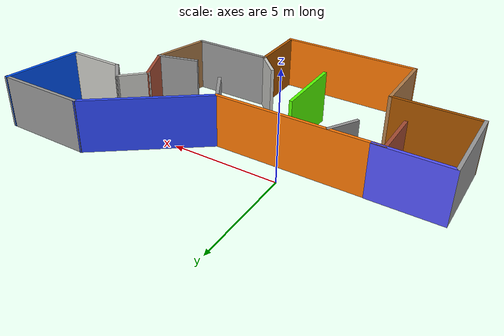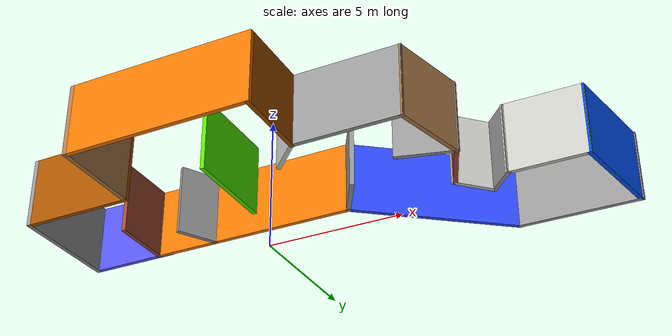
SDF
<?xml version='1.0'?>
<sdf version='1.6'>
  <model name='mynewworld'>
    <pose frame=''>2.91096 -2.70944 0 0 -0 0</pose>
    <link name='Wall_0'>
      <collision name='Wall_0_Collision'>
        <geometry>
          <box>
            <size>7.5 0.15 2.5</size>
          </box>
        </geometry>
        <pose frame=''>0 0 1.25 0 -0 0</pose>
      </collision>
      <visual name='Wall_0_Visual'>
        <pose frame=''>0 0 1.25 0 -0 0</pose>
        <geometry>
          <box>
            <size>7.5 0.15 2.5</size>
          </box>
        </geometry>
        <material>
          <script>
            <uri>file://media/materials/scripts/gazebo.material</uri>
            <name>Gazebo/Grey</name>
          </script>
          <ambient>0.996078 0.47451 0.0196078 1</ambient>
        </material>
        <meta>
          <layer>0</layer>
        </meta>
      </visual>
      <pose frame=''>-3.06596 1.65944 0 0 -0 0</pose>
    </link>
    <link name='Wall_10'>
      <collision name='Wall_10_Collision'>
        <geometry>
          <box>
            <size>3.75 0.15 2.5</size>
          </box>
        </geometry>
        <pose frame=''>0 0 1.25 0 -0 0</pose>
      </collision>
      <visual name='Wall_10_Visual'>
        <pose frame=''>0 0 1.25 0 -0 0</pose>
        <geometry>
          <box>
            <size>3.75 0.15 2.5</size>
          </box>
        </geometry>
        <material>
          <script>
            <uri>file://media/materials/scripts/gazebo.material</uri>
            <name>Gazebo/Grey</name>
          </script>
          <ambient>0 0 0 1</ambient>
        </material>
        <meta>
          <layer>0</layer>
        </meta>
      </visual>
      <pose frame=''>2.64396 -2.67266 0 0 -0 3.14159</pose>
    </link>
    <link name='Wall_12'>
      <collision name='Wall_12_Collision'>
        <geometry>
          <box>
            <size>3.25 0.15 2.5</size>
          </box>
        </geometry>
        <pose frame=''>0 0 1.25 0 -0 0</pose>
      </collision>
      <visual name='Wall_12_Visual'>
        <pose frame=''>0 0 1.25 0 -0 0</pose>
        <geometry>
          <box>
            <size>3.25 0.15 2.5</size>
          </box>
        </geometry>
        <material>
          <script>
            <uri>file://media/materials/scripts/gazebo.material</uri>
            <name>Gazebo/Grey</name>
          </script>
          <ambient>0.333333 1 0 1</ambient>
        </material>
        <meta>
          <layer>0</layer>
        </meta>
      </visual>
      <pose frame=''>-2.23196 -1.14675 0 0 0 -1.5708</pose>
    </link>
    <link name='Wall_14'>
      <collision name='Wall_14_Collision'>
        <geometry>
          <box>
            <size>2.75 0.15 2.5</size>
          </box>
        </geometry>
        <pose frame=''>0 0 1.25 0 -0 0</pose>
      </collision>
      <visual name='Wall_14_Visual'>
        <pose frame=''>0 0 1.25 0 -0 0</pose>
        <geometry>
          <box>
            <size>2.75 0.15 2.5</size>
          </box>
        </geometry>
        <material>
          <script>
            <uri>file://media/materials/scripts/gazebo.material</uri>
            <name>Gazebo/Grey</name>
          </script>
          <ambient>0.666667 0.333333 0 1</ambient>
        </material>
        <meta>
          <layer>0</layer>
        </meta>
      </visual>
      <pose frame=''>0.843957 -3.97266 0 0 0 -1.5708</pose>
    </link>
    <link name='Wall_15'>
      <collision name='Wall_15_Collision'>
        <geometry>
          <box>
            <size>6.5 0.15 2.5</size>
          </box>
        </geometry>
        <pose frame=''>0 0 1.25 0 -0 0</pose>
      </collision>
      <visual name='Wall_15_Visual'>
        <pose frame=''>0 0 1.25 0 -0 0</pose>
        <geometry>
          <box>
            <size>6.5 0.15 2.5</size>
          </box>
        </geometry>
        <material>
          <script>
            <uri>file://media/materials/scripts/gazebo.material</uri>
            <name>Gazebo/Grey</name>
          </script>
          <ambient>0.996078 0.47451 0.0196078 1</ambient>
        </material>
        <meta>
          <layer>0</layer>
        </meta>
      </visual>
      <pose frame=''>-2.33104 -5.27266 0 0 -0 3.14159</pose>
    </link>
    <link name='Wall_16'>
      <collision name='Wall_16_Collision'>
        <geometry>
          <box>
            <size>3.25 0.15 2.5</size>
          </box>
        </geometry>
        <pose frame=''>0 0 1.25 0 -0 0</pose>
      </collision>
      <visual name='Wall_16_Visual'>
        <pose frame=''>0 0 1.25 0 -0 0</pose>
        <geometry>
          <box>
            <size>3.25 0.15 2.5</size>
          </box>
        </geometry>
        <material>
          <script>
            <uri>file://media/materials/scripts/gazebo.material</uri>
            <name>Gazebo/Wood</name>
          </script>
          <ambient>1 1 1 1</ambient>
        </material>
        <meta>
          <layer>0</layer>
        </meta>
      </visual>
      <pose frame=''>-5.50604 -3.72266 0 0 -0 1.5708</pose>
    </link>
    <link name='Wall_17'>
      <collision name='Wall_17_Collision'>
        <geometry>
          <box>
            <size>4 0.15 2.5</size>
          </box>
        </geometry>
        <pose frame=''>0 0 1.25 0 -0 0</pose>
      </collision>
      <visual name='Wall_17_Visual'>
        <pose frame=''>0 0 1.25 0 -0 0</pose>
        <geometry>
          <box>
            <size>4 0.15 2.5</size>
          </box>
        </geometry>
        <material>
          <script>
            <uri>file://media/materials/scripts/gazebo.material</uri>
            <name>Gazebo/Grey</name>
          </script>
          <ambient>0.666667 0.333333 0 1</ambient>
        </material>
        <meta>
          <layer>0</layer>
        </meta>
      </visual>
      <pose frame=''>-7.43104 -2.17266 0 0 -0 3.14159</pose>
    </link>
    <link name='Wall_18'>
      <collision name='Wall_18_Collision'>
        <geometry>
          <box>
            <size>4 0.15 2.5</size>
          </box>
        </geometry>
        <pose frame=''>0 0 1.25 0 -0 0</pose>
      </collision>
      <visual name='Wall_18_Visual'>
        <pose frame=''>0 0 1.25 0 -0 0</pose>
        <geometry>
          <box>
            <size>4 0.15 2.5</size>
          </box>
        </geometry>
        <material>
          <script>
            <uri>file://media/materials/scripts/gazebo.material</uri>
            <name>Gazebo/Grey</name>
          </script>
          <ambient>1 1 1 1</ambient>
        </material>
        <meta>
          <layer>0</layer>
        </meta>
      </visual>
      <pose frame=''>-9.35604 -0.247664 0 0 -0 1.5708</pose>
    </link>
    <link name='Wall_19'>
      <collision name='Wall_19_Collision'>
        <geometry>
          <box>
            <size>3.25 0.15 2.5</size>
          </box>
        </geometry>
        <pose frame=''>0 0 1.25 0 -0 0</pose>
      </collision>
      <visual name='Wall_19_Visual'>
        <pose frame=''>0 0 1.25 0 -0 0</pose>
        <geometry>
          <box>
            <size>3.25 0.15 2.5</size>
          </box>
        </geometry>
        <material>
          <script>
            <uri>file://media/materials/scripts/gazebo.material</uri>
            <name>Gazebo/Grey</name>
          </script>
          <ambient>0.333333 0.333333 1 1</ambient>
        </material>
        <meta>
          <layer>0</layer>
        </meta>
      </visual>
      <pose frame=''>-7.80604 1.67734 0 0 -0 0</pose>
    </link>
    <link name='Wall_2'>
      <collision name='Wall_2_Collision'>
        <geometry>
          <box>
            <size>5.99687 0.15 2.5</size>
          </box>
        </geometry>
        <pose frame=''>0 0 1.25 0 -0 0</pose>
      </collision>
      <visual name='Wall_2_Visual'>
        <pose frame=''>0 0 1.25 0 -0 0</pose>
        <geometry>
          <box>
            <size>5.99687 0.15 2.5</size>
          </box>
        </geometry>
        <material>
          <script>
            <uri>file://media/materials/scripts/gazebo.material</uri>
            <name>Gazebo/Grey</name>
          </script>
          <ambient>0.188235 0.294118 1 1</ambient>
        </material>
        <meta>
          <layer>0</layer>
        </meta>
      </visual>
      <pose frame=''>2.91924 3.45094 0 0 -0 0.659605</pose>
    </link>
    <link name='Wall_23'>
      <collision name='Wall_23_Collision'>
        <geometry>
          <box>
            <size>2.25 0.15 2.5</size>
          </box>
        </geometry>
        <pose frame=''>0 0 1.25 0 -0 0</pose>
      </collision>
      <visual name='Wall_23_Visual'>
        <pose frame=''>0 0 1.25 0 -0 0</pose>
        <geometry>
          <box>
            <size>2.25 0.15 2.5</size>
          </box>
        </geometry>
        <material>
          <script>
            <uri>file://media/materials/scripts/gazebo.material</uri>
            <name>Gazebo/Bricks</name>
          </script>
          <ambient>1 1 1 1</ambient>
        </material>
        <meta>
          <layer>0</layer>
        </meta>
      </visual>
      <pose frame=''>-6.74096 0.609444 0 0 0 -1.5708</pose>
    </link>
    <link name='Wall_25'>
      <collision name='Wall_25_Collision'>
        <geometry>
          <box>
            <size>1.5 0.15 2.5</size>
          </box>
        </geometry>
        <pose frame=''>0 0 1.25 0 -0 0</pose>
      </collision>
      <visual name='Wall_25_Visual'>
        <pose frame=''>0 0 1.25 0 -0 0</pose>
        <geometry>
          <box>
            <size>1.5 0.15 2.5</size>
          </box>
        </geometry>
        <material>
          <script>
            <uri>file://media/materials/scripts/gazebo.material</uri>
            <name>Gazebo/Grey</name>
          </script>
          <ambient>1 1 1 1</ambient>
        </material>
        <meta>
          <layer>0</layer>
        </meta>
      </visual>
      <pose frame=''>-4.78941 1.03207 0 0 0 -2.0944</pose>
    </link>
    <link name='Wall_27'>
      <collision name='Wall_27_Collision'>
        <geometry>
          <box>
            <size>1.75 0.15 2.5</size>
          </box>
        </geometry>
        <pose frame=''>0 0 1.25 0 -0 0</pose>
      </collision>
      <visual name='Wall_27_Visual'>
        <pose frame=''>0 0 1.25 0 -0 0</pose>
        <geometry>
          <box>
            <size>1.75 0.15 2.5</size>
          </box>
        </geometry>
        <material>
          <script>
            <uri>file://media/materials/scripts/gazebo.material</uri>
            <name>Gazebo/Grey</name>
          </script>
          <ambient>1 1 1 1</ambient>
        </material>
        <meta>
          <layer>0</layer>
        </meta>
      </visual>
      <pose frame=''>1.00904 0.966624 0 0 0 -1.0472</pose>
    </link>
    <link name='Wall_29'>
      <collision name='Wall_29_Collision'>
        <geometry>
          <box>
            <size>1.5 0.15 2.5</size>
          </box>
        </geometry>
        <pose frame=''>0 0 1.25 0 -0 0</pose>
      </collision>
      <visual name='Wall_29_Visual'>
        <pose frame=''>0 0 1.25 0 -0 0</pose>
        <geometry>
          <box>
            <size>1.5 0.15 2.5</size>
          </box>
        </geometry>
        <material>
          <script>
            <uri>file://media/materials/scripts/gazebo.material</uri>
            <name>Gazebo/CeilingTiled</name>
          </script>
          <ambient>1 1 1 1</ambient>
        </material>
        <meta>
          <layer>0</layer>
        </meta>
      </visual>
      <pose frame=''>0.36666 -2.19537 0 0 -0 2.35619</pose>
    </link>
    <link name='Wall_3'>
      <collision name='Wall_3_Collision'>
        <geometry>
          <box>
            <size>4.25 0.15 2.5</size>
          </box>
        </geometry>
        <pose frame=''>0 0 1.25 0 -0 0</pose>
      </collision>
      <visual name='Wall_3_Visual'>
        <pose frame=''>0 0 1.25 0 -0 0</pose>
        <geometry>
          <box>
            <size>4.25 0.15 2.5</size>
          </box>
        </geometry>
        <material>
          <script>
            <uri>file://media/materials/scripts/gazebo.material</uri>
            <name>Gazebo/Grey</name>
          </script>
          <ambient>0 0 0 1</ambient>
        </material>
        <meta>
          <layer>0</layer>
        </meta>
      </visual>
      <pose frame=''>7.30604 5.24244 0 0 -0 0</pose>
    </link>
    <link name='Wall_31'>
      <collision name='Wall_31_Collision'>
        <geometry>
          <box>
            <size>2 0.15 2.5</size>
          </box>
        </geometry>
        <pose frame=''>0 0 1.25 0 -0 0</pose>
      </collision>
      <visual name='Wall_31_Visual'>
        <pose frame=''>0 0 1.25 0 -0 0</pose>
        <geometry>
          <box>
            <size>2 0.15 2.5</size>
          </box>
        </geometry>
        <material>
          <script>
            <uri>file://media/materials/scripts/gazebo.material</uri>
            <name>Gazebo/Grey</name>
          </script>
          <ambient>1 1 1 1</ambient>
        </material>
        <meta>
          <layer>0</layer>
        </meta>
      </visual>
      <pose frame=''>4.2234 -0.400664 0 0 0 -2.87979</pose>
    </link>
    <link name='Wall_4'>
      <collision name='Wall_4_Collision'>
        <geometry>
          <box>
            <size>3.7153 0.15 2.5</size>
          </box>
        </geometry>
        <pose frame=''>0 0 1.25 0 -0 0</pose>
      </collision>
      <visual name='Wall_4_Visual'>
        <pose frame=''>0 0 1.25 0 -0 0</pose>
        <geometry>
          <box>
            <size>3.7153 0.15 2.5</size>
          </box>
        </geometry>
        <material>
          <script>
            <uri>file://media/materials/scripts/gazebo.material</uri>
            <name>Gazebo/Grey</name>
          </script>
          <ambient>0 0.333333 1 1</ambient>
        </material>
        <meta>
          <layer>0</layer>
        </meta>
      </visual>
      <pose frame=''>9.00454 3.48965 0 0 0 -1.75408</pose>
    </link>
    <link name='Wall_5'>
      <collision name='Wall_5_Collision'>
        <geometry>
          <box>
            <size>2.75 0.15 2.5</size>
          </box>
        </geometry>
        <pose frame=''>0 0 1.25 0 -0 0</pose>
      </collision>
      <visual name='Wall_5_Visual'>
        <pose frame=''>0 0 1.25 0 -0 0</pose>
        <geometry>
          <box>
            <size>2.75 0.15 2.5</size>
          </box>
        </geometry>
        <material>
          <script>
            <uri>file://media/materials/scripts/gazebo.material</uri>
            <name>Gazebo/CeilingTiled</name>
          </script>
          <ambient>1 1 1 1</ambient>
        </material>
        <meta>
          <layer>0</layer>
        </meta>
      </visual>
      <pose frame=''>7.37963 1.73686 0 0 -0 3.14159</pose>
    </link>
    <link name='Wall_6'>
      <collision name='Wall_6_Collision'>
        <geometry>
          <box>
            <size>1.26787 0.15 2.5</size>
          </box>
        </geometry>
        <pose frame=''>0 0 1.25 0 -0 0</pose>
      </collision>
      <visual name='Wall_6_Visual'>
        <pose frame=''>0 0 1.25 0 -0 0</pose>
        <geometry>
          <box>
            <size>1.26787 0.15 2.5</size>
          </box>
        </geometry>
        <material>
          <script>
            <uri>file://media/materials/scripts/gazebo.material</uri>
            <name>Gazebo/Grey</name>
          </script>
          <ambient>1 1 1 1</ambient>
        </material>
        <meta>
          <layer>0</layer>
        </meta>
      </visual>
      <pose frame=''>5.70486 2.15153 0 0 -0 2.3057</pose>
    </link>
    <link name='Wall_7'>
      <collision name='Wall_7_Collision'>
        <geometry>
          <box>
            <size>1.5 0.15 2.5</size>
          </box>
        </geometry>
        <pose frame=''>0 0 1.25 0 -0 0</pose>
      </collision>
      <visual name='Wall_7_Visual'>
        <pose frame=''>0 0 1.25 0 -0 0</pose>
        <geometry>
          <box>
            <size>1.5 0.15 2.5</size>
          </box>
        </geometry>
        <material>
          <script>
            <uri>file://media/materials/scripts/gazebo.material</uri>
            <name>Gazebo/CeilingTiled</name>
          </script>
          <ambient>1 1 1 1</ambient>
        </material>
        <meta>
          <layer>0</layer>
        </meta>
      </visual>
      <pose frame=''>4.82619 2.0623 0 0 0 -2.35619</pose>
    </link>
    <link name='Wall_8'>
      <collision name='Wall_8_Collision'>
        <geometry>
          <box>
            <size>2.07164 0.15 2.5</size>
          </box>
        </geometry>
        <pose frame=''>0 0 1.25 0 -0 0</pose>
      </collision>
      <visual name='Wall_8_Visual'>
        <pose frame=''>0 0 1.25 0 -0 0</pose>
        <geometry>
          <box>
            <size>2.07164 0.15 2.5</size>
          </box>
        </geometry>
        <material>
          <script>
            <uri>file://media/materials/scripts/gazebo.material</uri>
            <name>Gazebo/Bricks</name>
          </script>
          <ambient>1 1 1 1</ambient>
        </material>
        <meta>
          <layer>0</layer>
        </meta>
      </visual>
      <pose frame=''>4.74619 0.725175 0 0 0 -1.17471</pose>
    </link>
    <link name='Wall_9'>
      <collision name='Wall_9_Collision'>
        <geometry>
          <box>
            <size>2.75 0.15 2.5</size>
          </box>
        </geometry>
        <pose frame=''>0 0 1.25 0 -0 0</pose>
      </collision>
      <visual name='Wall_9_Visual'>
        <pose frame=''>0 0 1.25 0 -0 0</pose>
        <geometry>
          <box>
            <size>2.75 0.15 2.5</size>
          </box>
        </geometry>
        <material>
          <script>
            <uri>file://media/materials/scripts/gazebo.material</uri>
            <name>Gazebo/Wood</name>
          </script>
          <ambient>1 1 1 1</ambient>
        </material>
        <meta>
          <layer>0</layer>
        </meta>
      </visual>
      <pose frame=''>4.78042 -1.41696 0 0 0 -1.8326</pose>
    </link>
    <static>1</static>
  </model>
</sdf>
